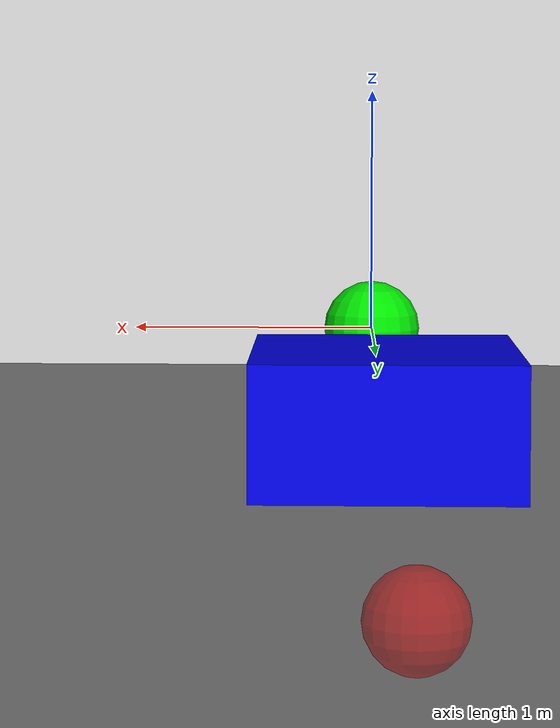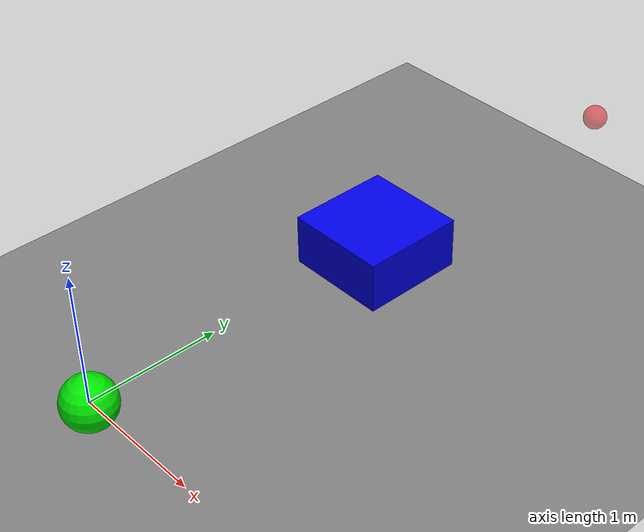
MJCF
<mujoco>
    <option gravity="0 0 0" timestep="0.005"/>
    <worldbody>
        <geom name='floor' pos='0 0 -0.4' size='5 5 .125' type='plane' condim='3'/>
        <body name="ball" pos="0 0 0">
            <light diffuse="1.5 1.5 1.5" pos="0 0 2" dir="0 0 -1" mode="track"/>
            <joint axis="1 0 0" damping="0" name="slide0" pos="0 0 0" type="slide"/>
            <joint axis="0 1 0" damping="0" name="slide1" pos="0 0 0" type="slide"/>
            <geom type="sphere" size="0.2" mass="100" rgba="0 .9 0 1"/>
        </body>
	<body mocap="true" name="mocap1" pos="0 5 0">
            <light name="light1" pos="0 0 2" mode="fixed" castshadow="false"/>
			<geom conaffinity="0" contype="0" pos="0 0 0" rgba=".9 0 0 0.5" size="0.1" type="sphere" />
		</body>
        <body name="box" pos="0 2.5 0">
            <light name="light2" pos="0 0 2" mode="fixed" />
            <geom mass="100" size="0.4 0.4 0.2" type="box" rgba="0 0 0.9 1"/>
        </body>
    </worldbody>
    <actuator>
        <motor gear="1" joint="slide0"/>
        <motor gear="1" joint="slide1"/>
    </actuator>
</mujoco>
